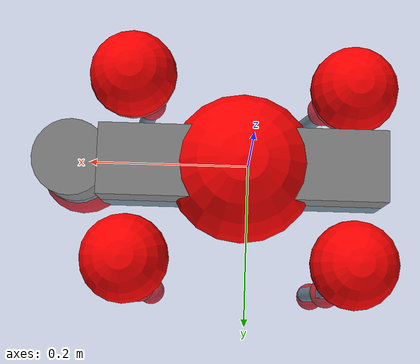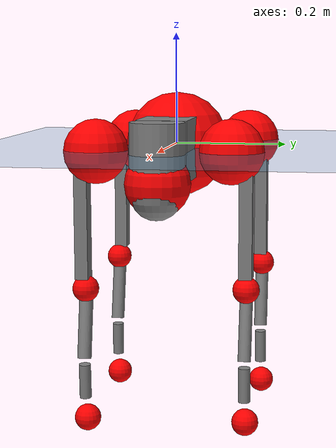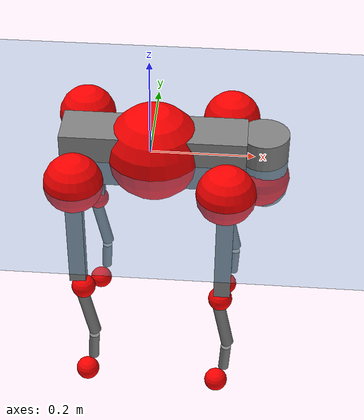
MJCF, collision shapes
<mujoco model="go2">
  <compiler angle="radian" assetdir="assets" balanceinertia="true" inertiafromgeom="false"/>

  <option timestep="0.005" density="1.2" viscosity="2e-05"/>

  <size nkey="1"/>

  <visual>
    <quality shadowsize="8192"/>
    <map shadowclip="0.5"/>
  </visual>

  <default>
    <default class="/">
      <geom contype="0" conaffinity="0" group="1" solref="-1000 -80"/>
      <site size="0.01 0.005 0.005" group="5"/>
      <general forcelimited="true" biastype="affine" gainprm="20" biasprm="0 -20 -0.5"/>
      <default class="go2">
        <joint armature="0.01" damping="0.01" frictionloss="0.2"/>
        <geom condim="1" margin="0.001"/>
        <default class="visual">
          <geom type="mesh" group="2"/>
        </default>
        <default class="collision">
          <geom group="3"/>
          <default class="foot">
            <geom size="0.022 0 0" condim="6" priority="1" friction="0.8 0.02 0.01" solimp="0.015 1 0.022"/>
          </default>
        </default>
        <default class="reward_collision_sphere">
          <geom group="5" rgba="1 0 0 1"/>
        </default>
      </default>
    </default>
  </default>

  <asset>
    <texture type="skybox" colorspace="auto" name="//unnamed_texture_0" builtin="gradient" rgb1="0.95 0.95 0.95" rgb2="0.95 0.95 0.95" width="100" height="600"/>
    <texture type="2d" colorspace="auto" name="texplane" builtin="checker" rgb1="0.345 0.575 0.748" rgb2="0.345 0.575 0.748" markrgb="1 1 1" width="512" height="512"/>
    <material name="MatPlane" class="/" texture="texplane" texuniform="true" texrepeat="2 2" specular="0.9"/>
    <material name="metal" class="/" rgba="0.9 0.95 0.95 1"/>
    <material name="black" class="/" rgba="0 0 0 1"/>
    <material name="white" class="/"/>
    <material name="gray" class="/" rgba="0.671705 0.692426 0.77427 1"/>
    <mesh name="base_0" class="/" file="base_0.obj"/>
    <mesh name="base_1" class="/" file="base_1.obj"/>
    <mesh name="base_2" class="/" file="base_2.obj"/>
    <mesh name="base_3" class="/" file="base_3.obj"/>
    <mesh name="base_4" class="/" file="base_4.obj"/>
    <mesh name="hip_0" class="/" file="hip_0.obj"/>
    <mesh name="hip_1" class="/" file="hip_1.obj"/>
    <mesh name="thigh_0" class="/" file="thigh_0.obj"/>
    <mesh name="thigh_1" class="/" file="thigh_1.obj"/>
    <mesh name="thigh_mirror_0" class="/" file="thigh_mirror_0.obj"/>
    <mesh name="thigh_mirror_1" class="/" file="thigh_mirror_1.obj"/>
    <mesh name="calf_0" class="/" file="calf_0.obj"/>
    <mesh name="calf_1" class="/" file="calf_1.obj"/>
    <mesh name="calf_mirror_0" class="/" file="calf_mirror_0.obj"/>
    <mesh name="calf_mirror_1" class="/" file="calf_mirror_1.obj"/>
    <mesh name="foot" class="/" file="foot.obj"/>
  </asset>

  <worldbody>
    <geom name="floor" class="/" size="100 100 0.125" type="plane" group="0" material="MatPlane"/>
    <light name="toplight_shadow" class="/" pos="0 0 5" dir="0.0990148 0.0990148 -0.990148" type="directional" ambient="0.04 0.04 0.04" diffuse="0.55 0.55 0.55" specular="0.12 0.12 0.12"/>
    <light name="toplight_fill" class="/" pos="0 0 5" dir="0.0990148 0.0990148 -0.990148" type="directional" castshadow="false" ambient="0.04 0.04 0.04" diffuse="0.3 0.3 0.3" specular="0.08 0.08 0.08"/>
    <body name="trunk" childclass="go2" pos="0.0072768 0.00328468 -0.000138789" quat="0.999997 -0.00208439 0.000820557 -0.000789306">
      <inertial pos="0.0234149 -0.0015242 -0.00689692" quat="-0.00136345 0.713936 -0.00141818 0.700208" mass="5.7439" diaginertia="0.0219961 0.0899546 0.0372209"/>
      <joint name="//unnamed_joint_0" type="free" armature="0" damping="0" frictionloss="0"/>
      <geom name="//unnamed_geom_1" class="visual" material="black" mesh="base_0"/>
      <geom name="//unnamed_geom_2" class="visual" material="black" mesh="base_1"/>
      <geom name="//unnamed_geom_3" class="visual" material="black" mesh="base_2"/>
      <geom name="//unnamed_geom_4" class="visual" material="white" mesh="base_3"/>
      <geom name="//unnamed_geom_5" class="visual" material="gray" mesh="base_4"/>
      <geom name="trunk_1" class="collision" size="0.176848 0.0439535 0.0535904" type="box"/>
      <geom name="trunk_2" class="collision" size="0.0470091 0.0423082" pos="0.208879 0 0.0110714" type="cylinder"/>
      <geom name="trunk_3" class="collision" size="0.0441886" pos="0.214742 0 -0.0664284"/>
      <geom name="//unnamed_geom_9" class="reward_collision_sphere" size="0.0940183"/>
      <geom name="//unnamed_geom_10" class="reward_collision_sphere" size="0.056411" pos="0.205214 0 -0.0498213"/>
      <site name="imu" pos="-0.0122014 0.00210722 0.0404461" size="0.00940183"/>
      <camera name="track" pos="0 -1.961 0" quat="0.707107 0.707107 0 0" mode="trackcom"/>
      <camera name="ego_camera" pos="0.228667 0 0.0498213" quat="-0.5 -0.5 0.5 0.5"/>
      <body name="FL_hip" pos="0.14424 0.0480591 -0.000266142" quat="0.999993 0.0017389 -0.00316052 -0.000401384">
        <inertial pos="0.00421143 0.00324519 0.00125653" quat="0.493322 0.498378 0.502397 0.505817" mass="0.509338" diaginertia="0.000169157 0.000543547 0.000727738"/>
        <joint name="FL_hip_joint" pos="0 0 0" axis="0.999988 -0.00466029 0.0011657" stiffness="0.00476844" range="-1.08433 1.15808" armature="0.00747169" damping="0.0230564" frictionloss="0.18639"/>
        <geom name="//unnamed_geom_11" class="visual" material="metal" mesh="hip_0"/>
        <geom name="//unnamed_geom_12" class="visual" material="gray" mesh="hip_1"/>
        <geom name="//unnamed_geom_13" class="collision" size="0.0432484 0.0188037" pos="0 0.07844 0" quat="0.707107 0.707107 0 0" type="cylinder"/>
        <geom name="//unnamed_geom_14" class="reward_collision_sphere" size="0.056411" pos="0 0.068635 0"/>
        <body name="FL_thigh" pos="0.000559719 0.0945498 0.000277738" quat="1 7.73275e-06 0.00034448 -0.000720986">
          <inertial pos="-0.00994759 -0.0198234 -0.0422565" quat="0.826491 0.0796531 -0.0260404 0.556677" mass="0.940579" diaginertia="0.0012261 0.0053861 0.00145915"/>
          <joint name="FL_thigh_joint" pos="0 0 0" axis="-0.00706363 0.999958 -0.00582685" range="-1.47371 3.40757" armature="0.0074305" damping="0.0429877" frictionloss="0.17891"/>
          <geom name="//unnamed_geom_15" class="visual" material="metal" mesh="thigh_0"/>
          <geom name="//unnamed_geom_16" class="visual" material="gray" mesh="thigh_1"/>
          <geom name="//unnamed_geom_17" class="collision" size="0.100129 0.0115172 0.0159831" pos="0 0 -0.11791" quat="0.707107 0 0.707107 0" type="box"/>
          <body name="FL_calf" pos="0.000238703 0.000610184 -0.237938" quat="0.999999 -0.000890947 -0.000861117 -0.000425694">
            <inertial pos="0.00260517 -0.00188008 -0.152714" quat="0.709335 -0.022497 0.0118749 0.704412" mass="0.2043" diaginertia="0.000313089 0.00131279 9.18517e-05"/>
            <joint name="FL_calf_joint" pos="0 0 0" axis="0.00272854 0.999988 0.00403641" range="-2.77191 -0.734321" armature="0.0101924" damping="0.00473854" frictionloss="0.168006"/>
            <geom name="//unnamed_geom_18" class="visual" material="gray" mesh="calf_0"/>
            <geom name="//unnamed_geom_19" class="visual" material="black" mesh="calf_1"/>
            <geom name="FL_calf0" class="collision" size="0.0112822 0.056411" pos="0.00586326 0 -0.0664284" quat="0.994493 0 -0.104807 0" type="cylinder"/>
            <geom name="//unnamed_geom_21" class="collision" size="0.010342 0.0305559" pos="0.0146581 0 -0.163857" quat="0.999688 0 0.0249974 0" type="cylinder"/>
            <geom name="//unnamed_geom_22" class="visual" pos="0 0 -0.235821" quat="1 0 0 0" material="black" mesh="foot"/>
            <geom name="FL_foot" class="foot" size="0.0226866" pos="-0.00146581 0 -0.235821"/>
            <geom name="//unnamed_geom_24" class="reward_collision_sphere" size="0.0235046"/>
            <geom name="//unnamed_geom_25" class="reward_collision_sphere" size="0.0235046" pos="-0.00146581 0 -0.235821"/>
            <site name="FL_foot" class="foot" pos="-0.00146581 0 -0.235821" size="0.00940183"/>
          </body>
        </body>
      </body>
      <body name="FR_hip" pos="0.142888 -0.0512313 -0.00319545" quat="1 -3.60718e-06 0.000143039 0.000118028">
        <inertial pos="-0.00848128 -0.000483934 -0.000622599" quat="0.491175 0.509393 0.499729 0.499537" mass="0.478126" diaginertia="0.000174729 0.000507091 0.00079002"/>
        <joint name="FR_hip_joint" pos="0 0 0" axis="0.99999 0.00397843 -0.00205411" stiffness="0.0376197" range="-1.08305 1.04978" armature="0.0129343" damping="0" frictionloss="0.117794"/>
        <geom name="//unnamed_geom_26" class="visual" pos="0 -1.10323e-09 -4.73198e-08" quat="4.63268e-05 1 0 0" material="metal" mesh="hip_0"/>
        <geom name="//unnamed_geom_27" class="visual" pos="0 -1.78847e-09 1.1704e-07" quat="4.63268e-05 1 0 0" material="gray" mesh="hip_1"/>
        <geom name="//unnamed_geom_28" class="collision" size="0.0432484 0.0188037" pos="0 -0.07844 0" quat="0.707107 0.707107 0 0" type="cylinder"/>
        <geom name="//unnamed_geom_29" class="reward_collision_sphere" size="0.056411" pos="0 -0.068635 0"/>
        <body name="FR_thigh" pos="0.00120741 -0.0939148 -0.00624328" quat="0.999994 0.00305297 0.0014764 1.42342e-05">
          <inertial pos="0.000863846 0.0298543 -0.0373654" quat="0.552 -0.00963616 0.0824404 0.829703" mass="1.05103" diaginertia="0.00125604 0.00528738 0.00153846"/>
          <joint name="FR_thigh_joint" pos="0 0 0" axis="0.00924334 -0.999955 -0.00233936" range="-3.51142 1.5636" armature="0.00922561" damping="0" frictionloss="0.185948"/>
          <geom name="//unnamed_geom_30" class="visual" material="metal" mesh="thigh_mirror_0"/>
          <geom name="//unnamed_geom_31" class="visual" material="gray" mesh="thigh_mirror_1"/>
          <geom name="//unnamed_geom_32" class="collision" size="0.100129 0.0115172 0.0159831" pos="0 0 -0.11791" quat="0.707107 0 0.707107 0" type="box"/>
          <body name="FR_calf" pos="-0.00268148 0.00327728 -0.236946" quat="1 -3.90193e-05 0.000231575 -0.000161371">
            <inertial pos="0.00332204 0.00157821 -0.157957" quat="0.706384 -0.00793846 0.010757 0.707703" mass="0.19133" diaginertia="0.000275765 0.00129986 8.4664e-05"/>
            <joint name="FR_calf_joint" pos="0 0 0" axis="0.00216462 -0.999669 -0.0256407" stiffness="0.00740172" range="0.826354 2.68768" armature="0.0103318" damping="0" frictionloss="0.201722"/>
            <geom name="//unnamed_geom_33" class="visual" material="gray" mesh="calf_mirror_0"/>
            <geom name="//unnamed_geom_34" class="visual" material="black" mesh="calf_mirror_1"/>
            <geom name="FR_calf0" class="collision" size="0.0122224 0.056411" pos="0.00732907 0 -0.0664284" quat="0.995004 0 -0.0998334 0" type="cylinder"/>
            <geom name="//unnamed_geom_36" class="collision" size="0.010342 0.0305559" pos="0.0146581 0 -0.163857" quat="0.999688 0 0.0249974 0" type="cylinder"/>
            <geom name="//unnamed_geom_37" class="visual" pos="0 0 -0.235821" quat="1 0 0 0" material="black" mesh="foot"/>
            <geom name="FR_foot" class="foot" size="0.0196177" pos="-0.00146581 0 -0.235821"/>
            <geom name="//unnamed_geom_39" class="reward_collision_sphere" size="0.0235046"/>
            <geom name="//unnamed_geom_40" class="reward_collision_sphere" size="0.0235046" pos="-0.00146581 0 -0.235821"/>
            <site name="FR_foot" class="foot" pos="-0.00146581 0 -0.235821" size="0.00940183"/>
          </body>
        </body>
      </body>
      <body name="RL_hip" pos="-0.144176 0.0480769 -0.00170895" quat="0.99999 2.13453e-05 -0.00102887 -0.00442535">
        <inertial pos="-0.00319894 0.000579225 0.00210464" quat="0.506424 0.498545 0.497034 0.49794" mass="0.587807" diaginertia="0.000191729 0.000526227 0.000801336"/>
        <joint name="RL_hip_joint" pos="0 0 0" axis="-0.999987 0.00344872 0.00362373" range="-1.08896 1.08422" armature="0.00938365" damping="0.00136298" frictionloss="0.190027"/>
        <geom name="//unnamed_geom_41" class="visual" pos="3.26016e-09 0 6.39066e-07" quat="4.63268e-05 0 1 0" material="metal" mesh="hip_0"/>
        <geom name="//unnamed_geom_42" class="visual" pos="5.28511e-09 0 5.66761e-07" quat="4.63268e-05 0 1 0" material="gray" mesh="hip_1"/>
        <geom name="//unnamed_geom_43" class="collision" size="0.0432484 0.0188037" pos="0 0.07844 0" quat="0.707107 0.707107 0 0" type="cylinder"/>
        <geom name="//unnamed_geom_44" class="reward_collision_sphere" size="0.056411" pos="0 0.068635 0"/>
        <body name="RL_thigh" pos="0.00675171 0.0934231 -0.00354981" quat="0.999994 0.00296721 6.49963e-05 -0.0017532">
          <inertial pos="-0.00382975 -0.0236125 -0.0382817" quat="0.833861 0.0881308 -0.0467433 0.542885" mass="1.01496" diaginertia="0.00127163 0.00556074 0.00146919"/>
          <joint name="RL_thigh_joint" pos="0 0 0" axis="-0.00861101 0.999958 -0.00314903" stiffness="0.0158197" range="-0.561346 4.48148" armature="0.0106119" damping="0.0434876" frictionloss="0.182929"/>
          <geom name="//unnamed_geom_45" class="visual" material="metal" mesh="thigh_0"/>
          <geom name="//unnamed_geom_46" class="visual" material="gray" mesh="thigh_1"/>
          <geom name="//unnamed_geom_47" class="collision" size="0.100129 0.0115172 0.0159831" pos="0 0 -0.11791" quat="0.707107 0 0.707107 0" type="box"/>
          <body name="RL_calf" pos="-0.000767173 0.00202598 -0.236366" quat="1 -7.28558e-06 3.04743e-05 -5.45209e-05">
            <inertial pos="0.00435035 -0.000458011 -0.158379" quat="0.711615 0.00173014 -0.00144779 0.702566" mass="0.198709" diaginertia="0.000316511 0.00135441 8.65688e-05"/>
            <joint name="RL_calf_joint" pos="0 0 0" axis="0.00139563 0.999892 -0.0146367" range="-2.75199 -0.836659" armature="0.00983062" damping="0.0388452" frictionloss="0.176478"/>
            <geom name="//unnamed_geom_48" class="visual" material="gray" mesh="calf_0"/>
            <geom name="//unnamed_geom_49" class="visual" material="black" mesh="calf_1"/>
            <geom name="RL_calf0" class="collision" size="0.0122224 0.056411" pos="0.00732907 0 -0.0664284" quat="0.995004 0 -0.0998334 0" type="cylinder"/>
            <geom name="//unnamed_geom_51" class="collision" size="0.010342 0.0305559" pos="0.0146581 0 -0.163857" quat="0.999688 0 0.0249974 0" type="cylinder"/>
            <geom name="//unnamed_geom_52" class="visual" pos="0 0 -0.235821" quat="1 0 0 0" material="black" mesh="foot"/>
            <geom name="RL_foot" class="foot" size="0.0182492" pos="-0.00146581 0 -0.235821"/>
            <geom name="//unnamed_geom_54" class="reward_collision_sphere" size="0.0235046"/>
            <geom name="//unnamed_geom_55" class="reward_collision_sphere" size="0.0235046" pos="-0.00146581 0 -0.235821"/>
            <site name="RL_foot" class="foot" pos="-0.00146581 0 -0.235821" size="0.00940183"/>
          </body>
        </body>
      </body>
      <body name="RR_hip" pos="-0.141404 -0.0383705 -0.00418065" quat="0.999999 -0.00130814 -0.000902458 -0.000192806">
        <inertial pos="0.00470015 -0.00649903 -0.000710938" quat="0.487939 0.519064 0.504961 0.487342" mass="0.5551" diaginertia="0.000180269 0.000516902 0.000787871"/>
        <joint name="RR_hip_joint" pos="0 0 0" axis="-0.999925 -0.00211615 -0.0120974" range="-1.00304 1.0296" armature="0.00574035" damping="0" frictionloss="0.240827"/>
        <geom name="//unnamed_geom_56" class="visual" pos="-3.25159e-09 -1.10323e-09 6.86386e-07" quat="2.14617e-09 4.63268e-05 4.63268e-05 -1" material="metal" mesh="hip_0"/>
        <geom name="//unnamed_geom_57" class="visual" pos="-5.30631e-09 -1.78847e-09 4.49721e-07" quat="2.14617e-09 4.63268e-05 4.63268e-05 -1" material="gray" mesh="hip_1"/>
        <geom name="//unnamed_geom_58" class="collision" size="0.0432484 0.0188037" pos="0 -0.07844 0" quat="0.707107 0.707107 0 0" type="cylinder"/>
        <geom name="//unnamed_geom_59" class="reward_collision_sphere" size="0.056411" pos="0 -0.068635 0"/>
        <body name="RR_thigh" pos="0.00358951 -0.094882 0.00525159" quat="1 -0.000239322 0.000425936 -0.000143592">
          <inertial pos="-0.00241018 0.022792 -0.0346034" quat="0.552089 -0.0200093 0.0846085 0.82924" mass="0.963247" diaginertia="0.00125492 0.00526679 0.00156994"/>
          <joint name="RR_thigh_joint" pos="0 0 0" axis="0.0245928 -0.999178 0.0322391" stiffness="0.0141328" range="-4.41145 0.479742" armature="0.00870474" damping="0.00356605" frictionloss="0.175199"/>
          <geom name="//unnamed_geom_60" class="visual" material="metal" mesh="thigh_mirror_0"/>
          <geom name="//unnamed_geom_61" class="visual" material="gray" mesh="thigh_mirror_1"/>
          <geom name="//unnamed_geom_62" class="collision" size="0.100129 0.0115172 0.0159831" pos="0 0 -0.11791" quat="0.707107 0 0.707107 0" type="box"/>
          <body name="RR_calf" pos="0.00923025 -0.00341776 -0.237798" quat="0.999999 0.000863268 0.00051998 -0.000203995">
            <inertial pos="-0.00396367 0.00122062 -0.158138" quat="0.70401 -0.00453936 0.00157403 0.710174" mass="0.19733" diaginertia="0.000338483 0.00151841 9.3347e-05"/>
            <joint name="RR_calf_joint" pos="0 0 0" axis="0.000305698 -0.999979 0.00645552" range="0.76624 2.54586" armature="0.0116335" damping="0.0199996" frictionloss="0.199581"/>
            <geom name="//unnamed_geom_63" class="visual" material="gray" mesh="calf_mirror_0"/>
            <geom name="//unnamed_geom_64" class="visual" material="black" mesh="calf_mirror_1"/>
            <geom name="RR_calf0" class="collision" size="0.0122224 0.056411" pos="0.00732907 0 -0.0664284" quat="0.995004 0 -0.0998334 0" type="cylinder"/>
            <geom name="//unnamed_geom_66" class="collision" size="0.010342 0.0305559" pos="0.0146581 0 -0.163857" quat="0.999688 0 0.0249974 0" type="cylinder"/>
            <geom name="//unnamed_geom_67" class="visual" pos="0 0 -0.235821" quat="1 0 0 0" material="black" mesh="foot"/>
            <geom name="RR_foot" class="foot" size="0.0180015" pos="-0.00146581 0 -0.235821"/>
            <geom name="//unnamed_geom_69" class="reward_collision_sphere" size="0.0235046"/>
            <geom name="//unnamed_geom_70" class="reward_collision_sphere" size="0.0235046" pos="-0.00146581 0 -0.235821"/>
            <site name="RR_foot" class="foot" pos="-0.00146581 0 -0.235821" size="0.00940183"/>
          </body>
        </body>
      </body>
    </body>
  </worldbody>

  <contact>
    <pair class="/" geom1="floor" geom2="FL_foot" name="//unnamed_contact_0"/>
    <pair class="/" geom1="floor" geom2="FR_foot" name="//unnamed_contact_1"/>
    <pair class="/" geom1="floor" geom2="RL_foot" name="//unnamed_contact_2"/>
    <pair class="/" geom1="floor" geom2="RR_foot" name="//unnamed_contact_3"/>
  </contact>

  <actuator>
    <general name="FL_hip" class="/" joint="FL_hip_joint" forcerange="-20.5275 20.5275" gainprm="19.0416" biasprm="0 -19.0416 -0.465671"/>
    <general name="FL_thigh" class="/" joint="FL_thigh_joint" forcerange="-23.3405 23.3405" gainprm="19.0416" biasprm="0 -19.0416 -0.465671"/>
    <general name="FL_calf" class="/" joint="FL_calf_joint" forcerange="-41.223 41.223" gainprm="19.0416" biasprm="0 -19.0416 -0.465671"/>
    <general name="FR_hip" class="/" joint="FR_hip_joint" forcerange="-15.3519 15.3519" gainprm="19.0416" biasprm="0 -19.0416 -0.465671"/>
    <general name="FR_thigh" class="/" joint="FR_thigh_joint" forcerange="-22.9524 22.9524" gainprm="19.0416" biasprm="0 -19.0416 -0.465671"/>
    <general name="FR_calf" class="/" joint="FR_calf_joint" forcerange="-48.8976 48.8976" gainprm="19.0416" biasprm="0 -19.0416 -0.465671"/>
    <general name="RL_hip" class="/" joint="RL_hip_joint" forcerange="-20.5835 20.5835" gainprm="19.0416" biasprm="0 -19.0416 -0.465671"/>
    <general name="RL_thigh" class="/" joint="RL_thigh_joint" forcerange="-20.7379 20.7379" gainprm="19.0416" biasprm="0 -19.0416 -0.465671"/>
    <general name="RL_calf" class="/" joint="RL_calf_joint" forcerange="-47.3125 47.3125" gainprm="19.0416" biasprm="0 -19.0416 -0.465671"/>
    <general name="RR_hip" class="/" joint="RR_hip_joint" forcerange="-24.1758 24.1758" gainprm="19.0416" biasprm="0 -19.0416 -0.465671"/>
    <general name="RR_thigh" class="/" joint="RR_thigh_joint" forcerange="-21.5511 21.5511" gainprm="19.0416" biasprm="0 -19.0416 -0.465671"/>
    <general name="RR_calf" class="/" joint="RR_calf_joint" forcerange="-32.509 32.509" gainprm="19.0416" biasprm="0 -19.0416 -0.465671"/>
  </actuator>

  <sensor>
    <gyro site="imu" name="imu_angular_velocity"/>
    <velocimeter site="imu" name="imu_linear_velocity"/>
    <framelinvel objtype="site" objname="FL_foot" name="FL_foot_global_linear_velocity"/>
    <framelinvel objtype="site" objname="FR_foot" name="FR_foot_global_linear_velocity"/>
    <framelinvel objtype="site" objname="RL_foot" name="RL_foot_global_linear_velocity"/>
    <framelinvel objtype="site" objname="RR_foot" name="RR_foot_global_linear_velocity"/>
  </sensor>

  <keyframe>
    <key name="home" qpos="0 0 0.325 1 0 0 0 0.1 0.8 -1.5 -0.1 -0.8 1.5 -0.1 0.8 -1.5 0.1 -0.8 1.5"/>
  </keyframe>
</mujoco>
